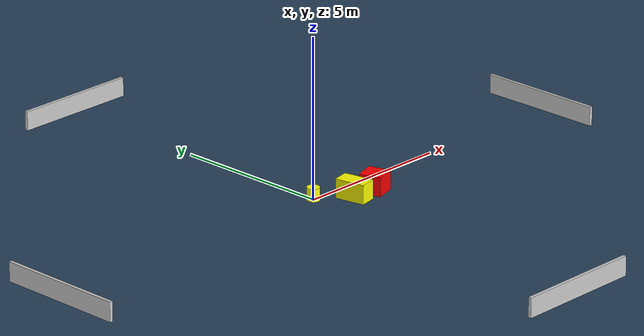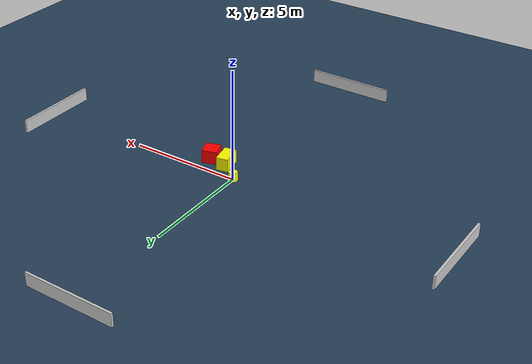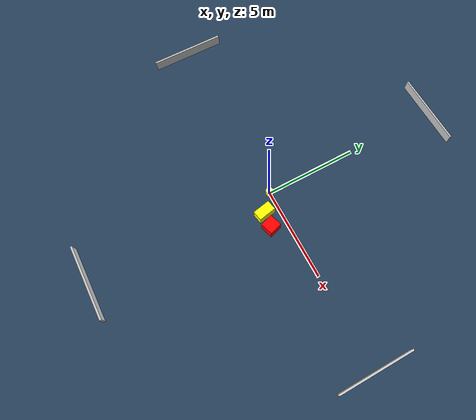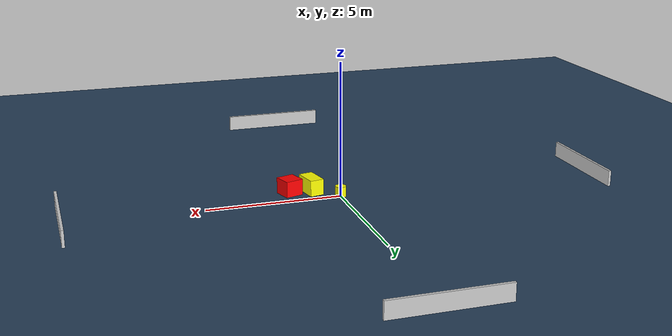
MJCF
<?xml version="1.0" ?>
<mujoco model="generated_environment">
  <option timestep="0.01" integrator="RK4" cone="elliptic"/>
  <default>
    <geom density="1"/>
  </default>
  <asset>
    <texture builtin="gradient" height="3072" name="skybox" rgb1="0.3 0.5 0.7" rgb2="0 0 0" type="skybox" width="512"/>
    <texture builtin="checker" height="300" name="groundplane" rgb1="0.2 0.3 0.4" rgb2="0.1 0.2 0.3" type="2d" width="300"/>
    <material name="groundplane" reflectance="0.2" texrepeat="5 5" texture="groundplane"/>
  </asset>
  <worldbody>
    <light dir="0 0 -1" directional="true" pos="0 0 1.5"/>
    <geom condim="3" friction="0.5 0.005 0.001" material="groundplane" name="floor" pos="0 0 0" size="0 0 0.05" type="plane"/>
    <body name="walls">
      <geom name="wall_1" condim="4" pos="-10.0 0.0 0.3" rgba="0.800000011920929 0.800000011920929 0.800000011920929 1.0" size="0.05 2.0 0.3" type="box"/>
      <geom name="wall_2" condim="4" pos="10.0 0.0 0.3" rgba="0.800000011920929 0.800000011920929 0.800000011920929 1.0" size="0.05 2.0 0.3" type="box"/>
      <geom name="wall_3" condim="4" pos="0.0 -10.0 0.3" rgba="0.800000011920929 0.800000011920929 0.800000011920929 1.0" size="2.0 0.05 0.3" type="box"/>
      <geom name="wall_4" condim="4" pos="0.0 10.0 0.3" rgba="0.800000011920929 0.800000011920929 0.800000011920929 1.0" size="2.0 0.05 0.3" type="box"/>
    </body>
    <body name="robot">
      <joint name="joint_x" type="slide" pos="0 0 0" axis="1 0 0"/>
      <joint name="joint_y" type="slide" pos="0 0 0" axis="0 1 0"/>
      <geom name="robot" type="cylinder" pos="0.0 0.0 0.2" size="0.2 0.2 0.0" mass="5.0" friction="1.0 0.005 0.0001" condim="4" rgba="1.0 1.0 0.0 1.0"/>
    </body>
    <body name="obstacle_1_movable">
      <geom name="obstacle_1_movable" condim="4" pos="0.8895959122421581 -0.781624928568605 0.3" euler="0 0 11.10416918126624" friction="0.0 0.005 0.001" rgba="1.0 1.0 0.0 1.0" size="0.2662740347379538 0.4746682722042432 0.3" type="box" mass="0.1"/>
      <joint type="free"/>
    </body>
    <body name="obstacle_2_static">
      <geom name="obstacle_2_static" condim="4" pos="1.7033572116801774 -0.8351294682509652 0.3" euler="0 0 287.7107539813582" friction="0.0 0.005 0.001" rgba="1.0 0.0 0.0 1.0" size="0.3466604394357774 0.33900369353655385 0.3" type="box"/>
    </body>
  </worldbody>
  <actuator>
    <motor name="actuator_x" joint="joint_x" gear="1" ctrlrange="-1 1"/>
    <motor name="actuator_y" joint="joint_y" gear="1" ctrlrange="-1 1"/>
  </actuator>
</mujoco>
